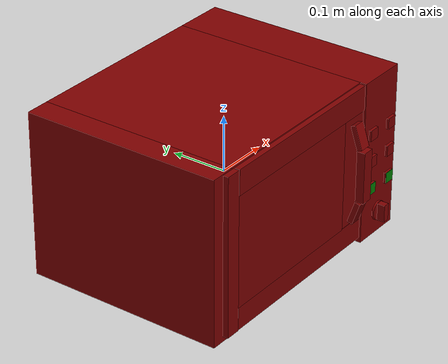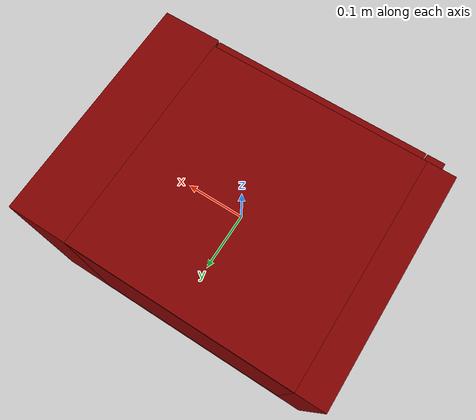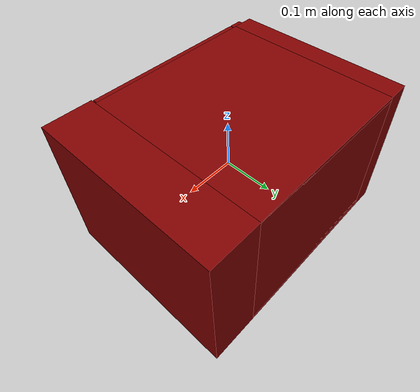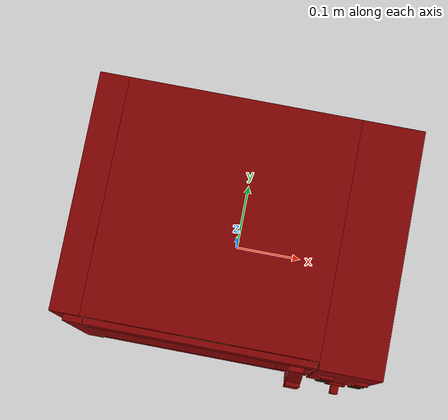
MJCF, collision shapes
<?xml version='1.0' encoding='UTF-8'?>
<mujoco model="model">
  <option timestep="0.002" gravity="0.0 0.0 -9.81"/>
  <compiler angle="radian"/>
  <asset>
    <mesh file="visuals/door.obj" name="door_vis"/>
    <mesh file="visuals/door_Clear.obj" name="door_Clear_vis"/>
    <mesh file="visuals/Body001.obj" name="Body001_vis"/>
    <mesh file="visuals/Button001.obj" name="Button001_vis"/>
    <mesh file="visuals/Button002.obj" name="Button002_vis"/>
    <mesh file="visuals/Button003.obj" name="Button003_vis"/>
    <mesh file="visuals/Button004.obj" name="Button004_vis"/>
    <mesh file="visuals/Button005.obj" name="Button005_vis"/>
    <mesh file="visuals/Button006.obj" name="Button006_vis"/>
    <mesh file="visuals/Disc001.obj" name="Disc001_vis"/>
    <mesh file="visuals/Knob001.obj" name="Knob001_vis"/>
    <texture file="visuals/T_BC001.png" name="Body001_material" type="2d"/>
    <material name="Body001_material" rgba="1 1 1 1.0" texture="Body001_material" shininess="0.1" specular="5"/>
    <texture file="visuals/T_BC001.png" name="door_material" type="2d"/>
    <material name="door_material" rgba="1 1 1 1.0" texture="door_material" shininess="0.1" specular="0.3103448502657381"/>
    <material name="door_Clear_material" rgba="0.06560491025447845 0.06560491025447845 0.06560491025447845 0.800000011920929" shininess="0.5228637158870697" specular="0.3103448502657381"/>
    <texture file="visuals/T_BC001.png" name="Button001_material" type="2d"/>
    <material name="Button001_material" rgba="1 1 1 1.0" texture="Button001_material" shininess="0.1" specular="5"/>
    <texture file="visuals/T_BC001.png" name="Button002_material" type="2d"/>
    <material name="Button002_material" rgba="1 1 1 1.0" texture="Button002_material" shininess="0.1" specular="5"/>
    <texture file="visuals/T_BC001.png" name="Button003_material" type="2d"/>
    <material name="Button003_material" rgba="1 1 1 1.0" texture="Button003_material" shininess="0.1" specular="5"/>
    <texture file="visuals/T_BC001.png" name="Button004_material" type="2d"/>
    <material name="Button004_material" rgba="1 1 1 1.0" texture="Button004_material" shininess="0.1" specular="5"/>
    <texture file="visuals/T_BC001.png" name="Button005_material" type="2d"/>
    <material name="Button005_material" rgba="1 1 1 1.0" texture="Button005_material" shininess="0.1" specular="5"/>
    <texture file="visuals/T_BC001.png" name="Button006_material" type="2d"/>
    <material name="Button006_material" rgba="1 1 1 1.0" texture="Button006_material" shininess="0.1" specular="5"/>
    <texture file="visuals/T_BC001.png" name="Disc001_material" type="2d"/>
    <material name="Disc001_material" rgba="1 1 1 1.0" texture="Disc001_material" shininess="0.1" specular="5"/>
    <texture file="visuals/T_BC001.png" name="Knob001_material" type="2d"/>
    <material name="Knob001_material" rgba="1 1 1 1.0" texture="Knob001_material" shininess="0.1" specular="5"/>
  </asset>
  <default>
    <default class="visual">
      <geom conaffinity="0" contype="0" group="1" type="mesh"/>
    </default>
    <default class="collision">
      <geom group="0" rgba="0.5 0 0 0.5"/>
    </default>
    <default class="spawn">
      <geom group="0" rgba="1 1 1 0.5" contype="0" conaffinity="0"/>
      <site group="0" rgba="1 1 1 0.5"/>
    </default>
    <default class="region">
      <geom group="1" conaffinity="0" contype="0" rgba="0 1 0 0"/>
    </default>
  </default>
  <worldbody>
    <body>
      <body name="object">
        <geom class="collision" type="box" pos="0.2241676151752472 -0.17926818132400513 -0.051530852913856506" size="0.009880973026156425 0.00028939510229974985 0.009720825590193272" quat="1.0 0.0 0.0 0.0" name="stop_button" rgba="0.0 0.5 0 0.5"/>
        <geom class="collision" type="box" pos="0.1711103469133377 -0.17916831374168396 -0.051530852913856506" size="0.009880973026156425 0.0002893954806495458 0.009720837697386742" quat="1.0 0.0 0.0 0.0" name="start_button" rgba="0.0 0.5 0 0.5"/>
        <geom class="collision" type="cylinder" pos="-0.027223782613873482 -0.018713073804974556 -0.11786344647407532" size="0.13464388251304626 0.0007771546952426434" quat="1.0 0.0 0.0 0.0" name="tray" rgba="0 1 0 0.5"/>
        <geom mesh="Body001_vis" type="mesh" solimp="0.998 0.998 0.001" solref="0.001 1" friction="0.95 0.3 0.1" class="visual" material="Body001_material"/>
        <geom class="collision" type="box" pos="0.19778893887996674 0.013108380138874054 -3.1888484954833984e-05" size="0.04671339690685272 0.1860373467206955 0.14831143617630005" quat="1.0 0.0 0.0 0.0"/>
        <geom class="collision" type="box" pos="-0.22142380475997925 0.018754683434963226 -3.1888484954833984e-05" size="0.022241029888391495 0.18039105832576752 0.14831143617630005" quat="1.0 0.0 0.0 0.0"/>
        <geom class="collision" type="box" pos="-0.02405361831188202 0.01891014724969864 0.14448341727256775" size="0.17512916028499603 0.1802355945110321 0.003796118777245283" quat="1.0 0.0 0.0 0.0"/>
        <geom class="collision" type="box" pos="-0.02405361831188202 0.018910139799118042 -0.13855567574501038" size="0.17512916028499603 0.1802355945110321 0.009787669405341148" quat="1.0 0.0 0.0 0.0"/>
        <geom class="collision" type="box" pos="-0.02405361831188202 0.16487355530261993 0.0026336759328842163" size="0.17512916028499603 0.034272171556949615 0.14517314732074738" quat="1.0 0.0 0.0 0.0"/>
        <body name="door">
          <joint axis="0.0 0.0 1.0" pos="-0.23480460047721863 -0.16846239566802979 0.00418679416179657" limited="true" name="microjoint" range="-1.5707963267948966 0.0" type="hinge" damping="1" frictionloss="1" armature=".01" stiffness="0.05"/>
          <geom mesh="door_vis" type="mesh" solimp="0.998 0.998 0.001" solref="0.001 1" friction="0.95 0.3 0.1" class="visual" material="door_material"/>
          <geom class="collision" type="box" pos="-0.20852850377559662 -0.16699858009815216 0.004422716796398163" size="0.01351348776370287 0.004958341829478741 0.14248691499233246" quat="1.0 0.0 0.0 0.0" name="door_main"/>
          <geom class="collision" type="box" pos="-0.05001668259501457 -0.16979660093784332 0.002629842609167099" size="0.14505714178085327 0.0014070942997932434 0.10015548765659332" quat="1.0 0.0 0.0 0.0"/>
          <geom class="collision" type="box" pos="-0.02248125895857811 -0.16699855029582977 0.12443258613348007" size="0.17081895470619202 0.004958278499543667 0.022480923682451248" quat="1.0 0.0 0.0 0.0"/>
          <geom class="collision" type="box" pos="-0.02248125895857811 -0.16646169126033783 -0.11734630167484283" size="0.17081928253173828 0.004421417601406574 0.02086268737912178" quat="1.0 0.0 0.0 0.0"/>
          <geom class="collision" type="box" pos="0.11994017660617828 -0.16622012853622437 0.002536427229642868" size="0.02801925130188465 0.004179860465228558 0.09879868477582932" quat="1.0 0.0 0.0 0.0"/>
          <geom class="collision" type="box" pos="0.12306191027164459 -0.1911911815404892 -0.00022266432642936707" size="0.010868117213249207 0.007811632938683033 0.04683265462517738" quat="1.0 0.0 0.0 0.0" name="door_handle_main"/>
          <geom class="collision" type="box" pos="0.12306191027164459 -0.1811274141073227 0.06931126862764359" size="0.010868117213249207 0.005029362626373768 0.021664418280124664" quat="0.9866194128990173 -0.16304025053977966 3.620221132670595e-17 1.8020221814975874e-24"/>
          <geom class="collision" type="box" pos="0.12306191027164459 -0.1811274141073227 -0.0700952559709549" size="0.010868117213249207 0.005029362626373768 0.021664418280124664" quat="7.448769423490376e-08 -1.2309195440707299e-08 -0.16304023563861847 0.9866194128990173"/>
          <body name="door_Clear">
            <geom mesh="door_Clear_vis" type="mesh" solimp="0.998 0.998 0.001" solref="0.001 1" friction="0.95 0.3 0.1" class="visual" material="door_Clear_material"/>
            <geom class="collision" type="box" pos="-0.05001668259501457 -0.16979660093784332 0.002629842609167099" size="0.14505714178085327 0.0014070942997932434 0.10015548765659332" quat="1.0 0.0 0.0 0.0"/>
          </body>
        </body>
        <body name="Button001">
          <joint axis="0.0 1.0 0.0" pos="0.17117924988269806 -0.176630899310112 0.051264457404613495" limited="true" name="Button001_joint" range="0.0 0.003" type="slide" damping="1" frictionloss="1" armature=".01" stiffness="0.05"/>
          <geom mesh="Button001_vis" type="mesh" solimp="0.998 0.998 0.001" solref="0.001 1" friction="0.95 0.3 0.1" class="visual" material="Button001_material"/>
          <geom class="collision" type="box" pos="0.17122964560985565 -0.17717145383358002 0.051160283386707306" size="0.010000260546803474 0.002476640045642853 0.009720752947032452" quat="1.0 0.0 0.0 0.0"/>
        </body>
        <body name="Button002">
          <joint axis="0.0 1.0 0.0" pos="0.22403302788734436 -0.17663080990314484 0.05126452445983887" limited="true" name="Button002_joint" range="0.0 0.003" type="slide" damping="1" frictionloss="1" armature=".01" stiffness="0.05"/>
          <geom mesh="Button002_vis" type="mesh" solimp="0.998 0.998 0.001" solref="0.001 1" friction="0.95 0.3 0.1" class="visual" material="Button002_material"/>
          <geom class="collision" type="box" pos="0.22399912774562836 -0.17717145383358002 0.051160283386707306" size="0.009953778237104416 0.0024766456335783005 0.009720765054225922" quat="1.0 0.0 0.0 0.0"/>
        </body>
        <body name="Button003">
          <joint axis="0.0 1.0 0.0" pos="0.17118698358535767 -0.17655141651630402 9.177066385746002e-05" limited="true" name="Button003_joint" range="0.0 0.003" type="slide" damping="1" frictionloss="1" armature=".01" stiffness="0.05"/>
          <geom mesh="Button003_vis" type="mesh" solimp="0.998 0.998 0.001" solref="0.001 1" friction="0.95 0.3 0.1" class="visual" material="Button003_material"/>
          <geom class="collision" type="box" pos="0.17122964560985565 -0.1771131306886673 -4.8883259296417236e-05" size="0.010000260546803474 0.002418358577415347 0.009720789268612862" quat="1.0 0.0 0.0 0.0"/>
        </body>
        <body name="Button004">
          <joint axis="0.0 1.0 0.0" pos="0.22402529418468475 -0.17655141651630402 9.18116420507431e-05" limited="true" name="Button004_joint" range="0.0 0.003" type="slide" damping="1" frictionloss="1" armature=".01" stiffness="0.05"/>
          <geom mesh="Button004_vis" type="mesh" solimp="0.998 0.998 0.001" solref="0.001 1" friction="0.95 0.3 0.1" class="visual" material="Button004_material"/>
          <geom class="collision" type="box" pos="0.22399912774562836 -0.1771131306886673 -4.887208342552185e-05" size="0.009953778237104416 0.0024183555506169796 0.009720777161419392" quat="1.0 0.0 0.0 0.0"/>
        </body>
        <body name="Button005">
          <joint axis="0.0 1.0 0.0" pos="0.17118436098098755 -0.17652486264705658 -0.05137568712234497" limited="true" name="Button005_joint" range="0.0 0.003" type="slide" damping="1" frictionloss="1" armature=".01" stiffness="0.05"/>
          <geom mesh="Button005_vis" type="mesh" solimp="0.998 0.998 0.001" solref="0.001 1" friction="0.95 0.3 0.1" class="visual" material="Button005_material"/>
          <geom class="collision" type="box" pos="0.17122964560985565 -0.17669349908828735 -0.051530852913856506" size="0.010000260546803474 0.001998740714043379 0.009720813482999802" quat="1.0 0.0 0.0 0.0"/>
        </body>
        <body name="Button006">
          <joint axis="0.0 1.0 0.0" pos="0.22402791678905487 -0.17652477324008942 -0.05137565732002258" limited="true" name="Button006_joint" range="0.0 0.003" type="slide" damping="1" frictionloss="1" armature=".01" stiffness="0.05"/>
          <geom mesh="Button006_vis" type="mesh" solimp="0.998 0.998 0.001" solref="0.001 1" friction="0.95 0.3 0.1" class="visual" material="Button006_material"/>
          <geom class="collision" type="box" pos="0.22399912774562836 -0.17661719024181366 -0.051530852913856506" size="0.009953618049621582 0.0020342126954346895 0.009720854461193085" quat="1.0 0.0 0.0 0.0"/>
        </body>
        <body name="Disc001">
          <joint axis="0.0 0.0 1.0" pos="-0.027904976159334183 -0.019133813679218292 -0.10595712065696716" limited="false" name="Disc001_joint" range="0 360" type="hinge" damping="1" frictionloss="1" armature=".01" stiffness="0.05"/>
          <geom mesh="Disc001_vis" type="mesh" solimp="0.998 0.998 0.001" solref="0.001 1" friction="0.95 0.3 0.1" class="visual" material="Disc001_material"/>
          <geom class="collision" type="cylinder" pos="-0.027223782613873482 -0.018713073804974556 -0.12366461008787155" size="0.13464435935020447 0.0043155234307050705" quat="1.0 0.0 0.0 0.0"/>
        </body>
        <body name="Knob001">
          <joint axis="0.0 1.0 0.0" pos="0.19694113731384277 -0.18311870098114014 -0.1049095094203949" limited="true" name="Knob001_joint" range="0.0 5.410520681182422" type="hinge" damping="0.05" armature="0.5" frictionloss="0.75"/>
          <geom mesh="Knob001_vis" type="mesh" solimp="0.998 0.998 0.001" solref="0.001 1" friction="0.95 0.3 0.1" class="visual" material="Knob001_material"/>
          <geom class="collision" type="cylinder" pos="0.19698505103588104 -0.17699407041072845 -0.10503329336643219" size="0.017063237726688385 0.0018240674398839474" quat="0.7071067094802856 0.70710688829422 0.0 0.0" friction="100 0.5 0.01"/>
          <geom class="collision" type="box" pos="0.19688715040683746 -0.18605351448059082 -0.1050335243344307" size="0.006037596147507429 0.007171902805566788 0.015446662902832031" quat="1.0 0.0 0.0 0.0" friction="100 0.5 0.01"/>
        </body>
        <geom class="region" name="reg_int" type="box" pos="-0.023790419101715088 -0.014705486595630646 0.008848428726196289" size="0.16877914762496948 0.1412563527226448 0.12693472003936768"/>
        <geom class="region" name="reg_main" type="box" pos="0.00041875988245010376 0.012338265776634216 -3.1888484954833984e-05" size="0.24508358335494995 0.18780746853351593 0.14931143617630005"/>
      <geom class="region" name="reg_tray" type="cylinder" pos="-0.027223782613873482 -0.018713073804974556 0.009348428493365646" size="0.13464388251304626 0.12543472027219832"/></body>
    </body>
  </worldbody>
  <actuator>
    <motor name="microjoint_actuator" joint="microjoint" gear="10"/>
    <motor name="Button001_joint_actuator" joint="Button001_joint" gear="0.5"/>
    <motor name="Button002_joint_actuator" joint="Button002_joint" gear="0.5"/>
    <motor name="Button003_joint_actuator" joint="Button003_joint" gear="0.5"/>
    <motor name="Button004_joint_actuator" joint="Button004_joint" gear="0.5"/>
    <motor name="Button005_joint_actuator" joint="Button005_joint" gear="0.5"/>
    <motor name="Button006_joint_actuator" joint="Button006_joint" gear="0.5"/>
    <motor name="Disc001_joint_actuator" joint="Disc001_joint" gear="0.5"/>
    <motor name="Knob001_joint_actuator" joint="Knob001_joint" gear="0.5"/>
  </actuator>
</mujoco>
